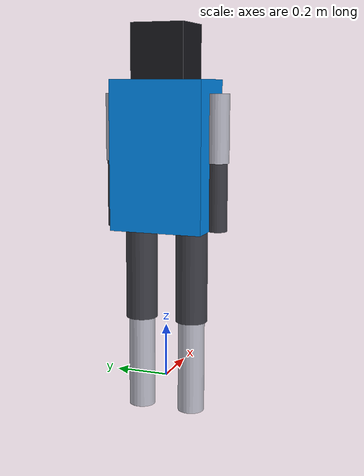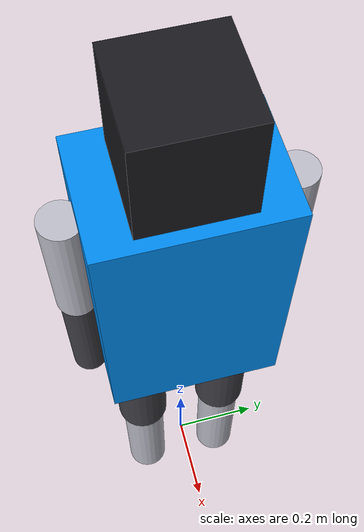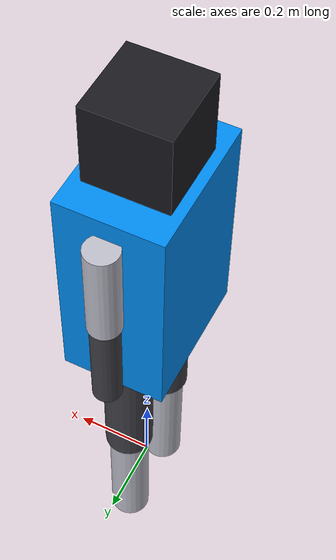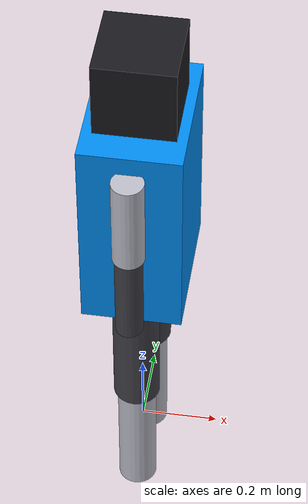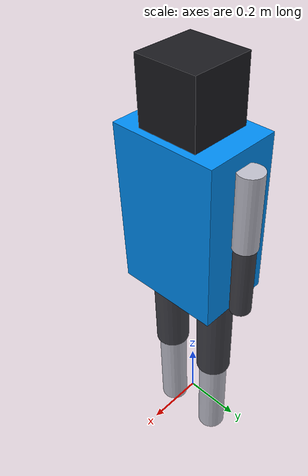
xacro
<?xml version="1.0"?>
<robot name="fydelisbot_humanoid_v2" xmlns:xacro="http://www.ros.org/wiki/xacro">

  <!-- ===================== Propriedades ===================== -->
  <xacro:property name="torso_x" value="0.25"/>
  <xacro:property name="torso_y" value="0.35"/>
  <xacro:property name="torso_z" value="0.55"/>
  <xacro:property name="torso_mass" value="15.0"/>

  <xacro:property name="head_size" value="0.20"/>
  <xacro:property name="head_mass" value="2.0"/>

  <xacro:property name="thigh_len" value="0.35"/>
  <xacro:property name="thigh_r" value="0.06"/>
  <xacro:property name="thigh_mass" value="3.5"/>

  <xacro:property name="shin_len" value="0.35"/>
  <xacro:property name="shin_r" value="0.05"/>
  <xacro:property name="shin_mass" value="2.5"/>

  <xacro:property name="upper_arm_len" value="0.25"/>
  <xacro:property name="upper_arm_r" value="0.04"/>
  <xacro:property name="upper_arm_mass" value="1.5"/>

  <xacro:property name="lower_arm_len" value="0.25"/>
  <xacro:property name="lower_arm_r" value="0.035"/>
  <xacro:property name="lower_arm_mass" value="1.2"/>

  <xacro:property name="shoulder_y" value="0.20"/>
  <xacro:property name="hip_y" value="0.10"/>
  <xacro:property name="base_torso_z" value="0.85"/>
  <xacro:property name="PI" value="3.141592653589793"/>

  <!-- ===================== Inércias ===================== -->
  <xacro:macro name="box_inertia" params="m x y z">
    <inertial>
      <mass value="${m}"/>
      <origin xyz="0 0 0" rpy="0 0 0"/>
      <inertia ixx="${m*(y*y+z*z)/12.0}" ixy="0.0" ixz="0.0"
               iyy="${m*(x*x+z*z)/12.0}" iyz="0.0"
               izz="${m*(x*x+y*y)/12.0}"/>
    </inertial>
  </xacro:macro>

  <xacro:macro name="cyl_inertia" params="m r l">
    <inertial>
      <mass value="${m}"/>
      <origin xyz="0 0 ${-l/2}" rpy="0 0 0"/>
      <inertia ixx="${m*(3.0*r*r+l*l)/12.0}" ixy="0.0" ixz="0.0"
               iyy="${m*(3.0*r*r+l*l)/12.0}" iyz="0.0"
               izz="${m*r*r/2.0}"/>
    </inertial>
  </xacro:macro>

  <!-- ===================== Materiais ===================== -->
  <material name="carbon_black"> <color rgba="0.10 0.10 0.12 1.0"/></material>
  <material name="cyber_blue">   <color rgba="0.00 0.55 0.95 1.0"/></material>
  <material name="titanium">     <color rgba="0.75 0.75 0.80 1.0"/></material>
  <material name="dark_gray">    <color rgba="0.25 0.25 0.28 1.0"/></material>

  <!-- ===================== Base ===================== -->
  <link name="base_footprint"/>

  <joint name="base_footprint_joint" type="fixed">
    <parent link="base_footprint"/>
    <child link="base_link"/>
    <origin xyz="0 0 ${base_torso_z}" rpy="0 0 0"/>
  </joint>

  <link name="base_link"/>

  <joint name="base_torso_joint" type="fixed">
    <parent link="base_link"/>
    <child link="torso_link"/>
    <origin xyz="0 0 0" rpy="0 0 0"/>
  </joint>

  <!-- ===================== Torso ===================== -->
  <link name="torso_link">
    <xacro:box_inertia m="${torso_mass}" x="${torso_x}" y="${torso_y}" z="${torso_z}"/>
    <visual>
      <origin xyz="0 0 0" rpy="0 0 0"/>
      <geometry><box size="${torso_x} ${torso_y} ${torso_z}"/></geometry>
      <material name="cyber_blue"/>
    </visual>
    <collision>
      <origin xyz="0 0 0" rpy="0 0 0"/>
      <geometry><box size="${torso_x} ${torso_y} ${torso_z}"/></geometry>
    </collision>
  </link>

  <!-- ===================== Cabeça (com Visor de Sensores) ===================== -->
  <link name="head_link">
    <xacro:box_inertia m="${head_mass}" x="${head_size}" y="${head_size}" z="${head_size}"/>
    <visual>
      <origin xyz="0 0 ${head_size/2}" rpy="0 0 0"/>
      <geometry><box size="${head_size} ${head_size} ${head_size}"/></geometry>
      <material name="carbon_black"/>
    </visual>
    <collision>
      <origin xyz="0 0 ${head_size/2}" rpy="0 0 0"/>
      <geometry><box size="${head_size} ${head_size} ${head_size}"/></geometry>
    </collision>
  </link>

  <joint name="neck_joint" type="revolute">
    <parent link="torso_link"/>
    <child link="head_link"/>
    <origin xyz="0 0 ${torso_z/2}" rpy="0 0 0"/>
    <axis xyz="0 0 1"/>
    <limit lower="-1.0" upper="1.0" effort="15.0" velocity="2.0"/>
    <dynamics damping="0.2" friction="0.05"/>
  </joint>

  <!-- ===================== Braços Modulares ===================== -->
  <xacro:macro name="arm_chain" params="side y_sign">
    <!-- Ombro Pitch -->
    <link name="${side}_shoulder_pitch_link">
      <xacro:cyl_inertia m="${upper_arm_mass/2}" r="${upper_arm_r}" l="${upper_arm_len}"/>
      <visual>
        <origin xyz="0 0 ${-upper_arm_len/2}" rpy="0 0 0"/>
        <geometry><cylinder radius="${upper_arm_r}" length="${upper_arm_len}"/></geometry>
        <material name="titanium"/>
      </visual>
      <collision>
        <origin xyz="0 0 ${-upper_arm_len/2}" rpy="0 0 0"/>
        <geometry><cylinder radius="${upper_arm_r}" length="${upper_arm_len}"/></geometry>
      </collision>
    </link>

    <joint name="${side}_shoulder_pitch_joint" type="revolute">
      <parent link="torso_link"/>
      <child link="${side}_shoulder_pitch_link"/>
      <origin xyz="0 ${y_sign * shoulder_y} ${torso_z/2 - 0.05}" rpy="0 0 0"/>
      <axis xyz="0 1 0"/>
      <limit lower="-2.5" upper="2.5" effort="30.0" velocity="3.0"/>
      <dynamics damping="0.3" friction="0.05"/>
    </joint>

    <!-- Cotovelo -->
    <link name="${side}_elbow_link">
      <xacro:cyl_inertia m="${lower_arm_mass}" r="${lower_arm_r}" l="${lower_arm_len}"/>
      <visual>
        <origin xyz="0 0 ${-lower_arm_len/2}" rpy="0 0 0"/>
        <geometry><cylinder radius="${lower_arm_r}" length="${lower_arm_len}"/></geometry>
        <material name="dark_gray"/>
      </visual>
      <collision>
        <origin xyz="0 0 ${-lower_arm_len/2}" rpy="0 0 0"/>
        <geometry><cylinder radius="${lower_arm_r}" length="${lower_arm_len}"/></geometry>
      </collision>
    </link>

    <joint name="${side}_elbow_joint" type="revolute">
      <parent link="${side}_shoulder_pitch_link"/>
      <child link="${side}_elbow_link"/>
      <origin xyz="0 0 ${-upper_arm_len}" rpy="0 0 0"/>
      <axis xyz="0 1 0"/>
      <limit lower="-2.0" upper="0.0" effort="20.0" velocity="3.0"/>
      <dynamics damping="0.2" friction="0.05"/>
    </joint>
  </xacro:macro>

  <xacro:arm_chain side="left"  y_sign="1"/>
  <xacro:arm_chain side="right" y_sign="-1"/>

  <!-- ===================== Pernas Humanóides Avançadas ===================== -->
  <xacro:macro name="leg_chain" params="side y_sign">
    <!-- Coxa -->
    <link name="${side}_thigh_link">
      <xacro:cyl_inertia m="${thigh_mass}" r="${thigh_r}" l="${thigh_len}"/>
      <visual>
        <origin xyz="0 0 ${-thigh_len/2}" rpy="0 0 0"/>
        <geometry><cylinder radius="${thigh_r}" length="${thigh_len}"/></geometry>
        <material name="dark_gray"/>
      </visual>
      <collision>
        <origin xyz="0 0 ${-thigh_len/2}" rpy="0 0 0"/>
        <geometry><cylinder radius="${thigh_r}" length="${thigh_len}"/></geometry>
      </collision>
    </link>

    <joint name="${side}_hip_joint" type="revolute">
      <parent link="torso_link"/>
      <child link="${side}_thigh_link"/>
      <origin xyz="0 ${y_sign * hip_y} ${-torso_z/2}" rpy="0 0 0"/>
      <axis xyz="1 0 0"/>
      <limit lower="-1.2" upper="0.5" effort="80.0" velocity="5.0"/>
      <dynamics damping="0.5" friction="0.1"/>
    </joint>

    <!-- Canela -->
    <link name="${side}_shin_link">
      <xacro:cyl_inertia m="${shin_mass}" r="${shin_r}" l="${shin_len}"/>
      <visual>
        <origin xyz="0 0 ${-shin_len/2}" rpy="0 0 0"/>
        <geometry><cylinder radius="${shin_r}" length="${shin_len}"/></geometry>
        <material name="titanium"/>
      </visual>
      <collision>
        <origin xyz="0 0 ${-shin_len/2}" rpy="0 0 0"/>
        <geometry><cylinder radius="${shin_r}" length="${shin_len}"/></geometry>
      </collision>
    </link>

    <joint name="${side}_knee_joint" type="revolute">
      <parent link="${side}_thigh_link"/>
      <child link="${side}_shin_link"/>
      <origin xyz="0 0 ${-thigh_len}" rpy="0 0 0"/>
      <axis xyz="1 0 0"/>
      <limit lower="0.0" upper="2.0" effort="80.0" velocity="5.0"/>
      <dynamics damping="0.5" friction="0.1"/>
    </joint>
  </xacro:macro>

  <xacro:leg_chain side="left"  y_sign="1"/>
  <xacro:leg_chain side="right" y_sign="-1"/>

  <!-- ===================== Configurações do Gazebo ===================== -->
  <gazebo reference="torso_link">
    <material>Gazebo/Blue</material>
  </gazebo>

  <gazebo reference="head_link">
    <material>Gazebo/DarkGrey</material>
  </gazebo>

</robot>
